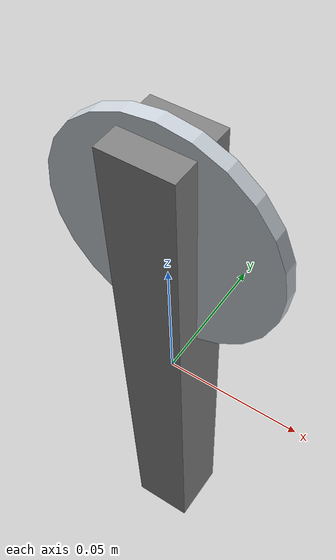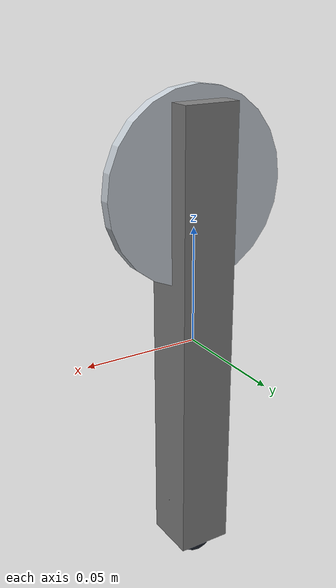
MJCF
<mujoco model="vla82_vla82_038">
  <compiler angle="radian"/>
  <asset>
    <texture name="source_texture" type="2d" file="source_texture.png"/>
    <material name="source_material" texture="source_texture" rgba="1 1 1 1"/>
  </asset>
  <default>
    <default class="visual"><geom contype="0" conaffinity="0" group="1" mass="0"/></default>
    <default class="collision"><geom contype="1" conaffinity="1" group="0" density="300" friction="0.45 0.004 0.0001" solref="0.02 1" solimp="0.9 0.95 0.001"/></default>
    <default class="region"><geom contype="0" conaffinity="0" group="1" rgba="0 1 0 0" mass="0"/></default>
  </default>
  <worldbody><body><body name="object">
    <geom name="pizza_handle" class="visual" type="capsule" pos="0 0 -0.050" size="0.010 0.050" rgba="0.10 0.12 0.16 1"/>
    <geom name="pizza_handle_grip" class="visual" type="cylinder" pos="0 0 -0.056" size="0.012 0.036" rgba="0.18 0.20 0.24 1"/>
    <geom name="pizza_fork" class="visual" type="box" pos="0 0 0.014" size="0.006 0.005 0.026" rgba="0.66 0.69 0.72 1"/>
    <geom name="pizza_blade" class="visual" type="cylinder" pos="0 0 0.066" size="0.040 0.0025" quat="0.7071068 0.7071068 0 0" rgba="0.78 0.81 0.84 1"/>
    <geom name="blade_axle" class="visual" type="cylinder" pos="0 0 0.066" size="0.007 0.008" quat="0.7071068 0.7071068 0 0" rgba="0.24 0.26 0.30 1"/>
    <geom name="legacy_visual_mass_carrier" class="visual" type="box" size="0.012000 0.012000 0.100000" mass="0.115200000" rgba="0 0 0 0"/>
    <geom name="collision" class="collision" type="box" size="0.012000 0.012000 0.100000"/>
    <geom name="reg_bbox" class="region" type="box" pos="0 0 0" size="0.012000 0.012000 0.100000"/>
  </body></body></worldbody>
  <actuator/>
</mujoco>
